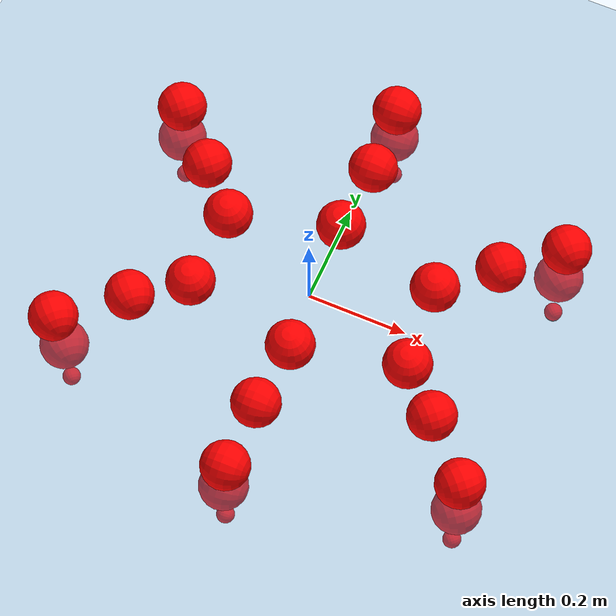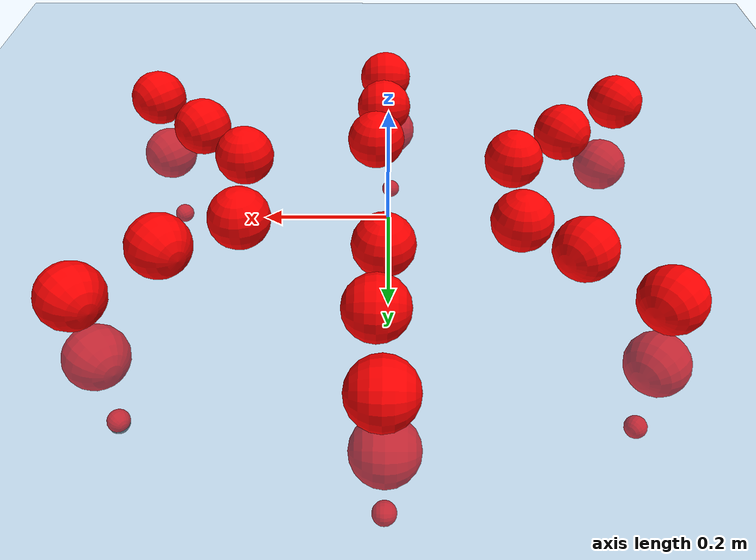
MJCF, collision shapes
<mujoco model="Golem">
  <compiler angle="radian" assetdir="assets" balanceinertia="true" inertiafromgeom="false"/>

  <option timestep="0.005" density="1.2" viscosity="2e-05"/>

  <size nkey="1"/>

  <visual>
    <quality shadowsize="8192"/>
    <map shadowclip="0.5"/>
  </visual>

  <default>
    <default class="/">
      <joint armature="0.01" damping="0.01" frictionloss="0.01"/>
      <geom contype="0" conaffinity="0" group="1" solref="-1000 -80"/>
      <site size="0.01 0.005 0.005" group="5"/>
      <general forcelimited="true" biastype="affine" gainprm="25" biasprm="0 -25 -0.5"/>
      <default class="visual">
        <geom type="mesh" group="2"/>
      </default>
      <default class="collision">
        <geom group="3"/>
      </default>
      <default class="foot">
        <geom size="0.01 0 0" condim="6" group="4" priority="1" solimp="0.015 1 0.01"/>
      </default>
      <default class="reward_collision_sphere">
        <geom group="5" rgba="1 0 0 1"/>
      </default>
    </default>
  </default>

  <asset>
    <texture type="skybox" colorspace="auto" name="//unnamed_texture_0" builtin="gradient" rgb1="0.95 0.95 0.95" rgb2="0.95 0.95 0.95" width="100" height="600"/>
    <texture type="2d" colorspace="auto" name="texplane" builtin="checker" rgb1="0.345 0.575 0.748" rgb2="0.345 0.575 0.748" markrgb="1 1 1" width="512" height="512"/>
    <material name="MatPlane" class="/" texture="texplane" texuniform="true" texrepeat="2 2" specular="0.9"/>
    <mesh name="body" class="/" file="body.stl" scale="0.001 0.001 0.001"/>
    <mesh name="coxa" class="/" file="coxa.stl" scale="0.001 0.001 0.001"/>
    <mesh name="femur" class="/" file="femur.stl" scale="0.001 0.001 0.001"/>
    <mesh name="tibia" class="/" file="tibia.stl" scale="0.001 0.001 0.001"/>
    <mesh name="tarsus" class="/" file="tarsus.stl" scale="0.001 0.001 0.001"/>
  </asset>

  <worldbody>
    <geom name="floor" class="/" size="100 100 0.125" type="plane" group="0" material="MatPlane"/>
    <light name="toplight_shadow" class="/" pos="0 0 5" dir="0.0990148 0.0990148 -0.990148" type="directional" ambient="0.04 0.04 0.04" diffuse="0.55 0.55 0.55" specular="0.12 0.12 0.12"/>
    <light name="toplight_fill" class="/" pos="0 0 5" dir="0.0990148 0.0990148 -0.990148" type="directional" castshadow="false" ambient="0.04 0.04 0.04" diffuse="0.3 0.3 0.3" specular="0.08 0.08 0.08"/>
    <body name="trunk" pos="0.00925983 0.0014301 0.000427889" quat="0.99998 0.00366043 -0.00515746 0.000233388">
      <inertial pos="0.00207236 -0.0138212 -0.0126586" quat="0.999377 0.021944 -0.0195176 0.019587" mass="7.08977" diaginertia="0.0588552 0.0323404 0.00965627"/>
      <joint name="//unnamed_joint_0" type="free"/>
      <geom name="//unnamed_geom_1" class="/" pos="0 0 0.0623054" quat="1 0 0 0" type="mesh" rgba="0.9 0.9 0.9 1" mesh="body"/>
      <site name="imu" class="/" pos="0.175251 -0.0535792 0.129475" size="0.0121307"/>
      <camera name="track" class="/" pos="0 -2.54001 0" quat="0.707107 0.707107 0 0" mode="trackcom"/>
      <camera name="ego_camera" class="/" pos="0.181441 0 0.0973522" quat="-0.5 -0.5 0.5 0.5"/>
      <body name="coxa_RR" pos="-0.248409 -0.116451 0.0591866" quat="0.379771 0.00411037 0.00218332 -0.925069">
        <inertial pos="-0.00812161 -0.00556838 -0.00598518" quat="0.997533 0.0671812 0.014986 0.0137828" mass="0.253327" diaginertia="0.0443961 0.0265314 0.00779762"/>
        <joint name="coxa_joint_RR" class="/" pos="0 0 0" axis="0.00254982 0.00462509 -0.999986" range="-3.13699 3.41736" armature="0.00387104" damping="0" frictionloss="0.0112768"/>
        <geom name="//unnamed_geom_2" class="/" type="mesh" rgba="0.2 0.2 0.2 1" mesh="coxa"/>
        <geom name="//unnamed_geom_3" class="reward_collision_sphere" size="0.048523" pos="-0.041871 0 0"/>
        <body name="femur_RR" pos="0.0772882 -0.011546 0.00653929" quat="0.503349 -0.498815 0.498777 0.499043">
          <inertial pos="-0.0120644 -0.00542794 -0.00103641" quat="0.998306 0.0298114 -0.0220671 -0.0448339" mass="0.371494" diaginertia="0.0542728 0.0340096 0.0088651"/>
          <joint name="femur_joint_RR" class="/" pos="0 0 0" axis="0.00654391 0.00720068 -0.999953" range="-3.28645 3.29672" armature="0.0114043" damping="0.0677097" frictionloss="0.00886734"/>
          <geom name="//unnamed_geom_4" class="/" type="mesh" rgba="0.9 0.9 0.9 1" mesh="femur"/>
          <geom name="//unnamed_geom_5" class="reward_collision_sphere" size="0.048523"/>
          <body name="tibia_RR" pos="-0.00389561 -0.150191 -0.00783059" quat="0.000451815 0.999994 0.000498877 -0.00334098">
            <inertial pos="0.00953754 -0.000322808 0.0001541" quat="0.999618 8.22598e-05 0.0248705 -0.012063" mass="0.299353" diaginertia="0.0503006 0.0336001 0.00780027"/>
            <joint name="tibia_joint_RR" class="/" pos="0 0 0" axis="0.0139019 -0.0507681 0.998614" range="-3.03764 3.11648" armature="0.0128376" damping="0.0176871" frictionloss="0.0128196"/>
            <geom name="//unnamed_geom_6" class="/" type="mesh" rgba="0.2 0.2 0.2 1" mesh="tibia"/>
            <geom name="//unnamed_geom_7" class="reward_collision_sphere" size="0.048523"/>
            <body name="tarsus_RR" pos="0.133188 -0.00876605 0.000280302" quat="0.999993 -0.00313489 -0.00151624 -0.00155891">
              <inertial pos="0.0865636 0.00158803 0.00552769" quat="0.498701 0.495824 0.499809 0.505616" mass="0.303154" diaginertia="0.045926 0.027932 0.00745389"/>
              <joint name="tarsus_joint_RR" class="/" pos="0 0 0" axis="-0.00812107 0.00425131 0.999958" range="-3.15039 3.15321" armature="0.0115883" damping="0.02398" frictionloss="0.0182727"/>
              <geom name="//unnamed_geom_8" class="/" type="mesh" rgba="0.9 0.9 0.9 1" mesh="tarsus"/>
              <geom name="foot_1" class="foot" size="0.0124863" pos="0.156318 0 0" quat="0 -0.707107 0 0.707107"/>
              <geom name="//unnamed_geom_10" class="reward_collision_sphere" size="0.048523"/>
              <geom name="//unnamed_geom_11" class="reward_collision_sphere" size="0.0181961" pos="0.150038 0 0"/>
              <site name="foot_1" class="foot" pos="0.156318 0 0" quat="0 -0.707107 0 0.707107" size="0.0121307"/>
            </body>
          </body>
        </body>
      </body>
      <body name="coxa_RM" pos="0.012097 -0.178966 0.0628633" quat="0.707983 0.00139233 0.00110849 -0.706227">
        <inertial pos="0.0116993 0.000524753 0.00245405" quat="0.999984 -0.00293934 -0.00200952 0.00429229" mass="0.308146" diaginertia="0.0483433 0.0258153 0.00750622"/>
        <joint name="coxa_joint_RM" class="/" pos="0 0 0" axis="-0.00293211 -0.00445792 -0.999986" range="-3.33913 3.10888" armature="0.00617793" damping="0" frictionloss="0.0114002"/>
        <geom name="//unnamed_geom_12" class="/" type="mesh" rgba="0.2 0.2 0.2 1" mesh="coxa"/>
        <geom name="//unnamed_geom_13" class="reward_collision_sphere" size="0.048523" pos="-0.041871 0 0"/>
        <body name="femur_RM" pos="0.0884911 -0.0132866 -0.0116396" quat="0.497404 -0.502328 0.500552 0.499704">
          <inertial pos="-0.000671846 0.00704958 -0.00490476" quat="0.997791 -0.0365244 0.0549285 -0.00784079" mass="0.388227" diaginertia="0.0669296 0.0391389 0.0106256"/>
          <joint name="femur_joint_RM" class="/" pos="0 0 0" axis="0.00562735 0.00110073 -0.999984" range="-2.86771 3.20657" armature="0.0125645" damping="0" frictionloss="0.01194"/>
          <geom name="//unnamed_geom_14" class="/" type="mesh" rgba="0.9 0.9 0.9 1" mesh="femur"/>
          <geom name="//unnamed_geom_15" class="reward_collision_sphere" size="0.048523"/>
          <body name="tibia_RM" pos="0.0115545 -0.134574 -0.00368932" quat="0.00453543 0.999976 0.00390146 -0.0034431">
            <inertial pos="0.0088904 -0.000890173 0.00317907" quat="0.998826 0.0438916 -0.0196639 -0.00574655" mass="0.353307" diaginertia="0.0526973 0.0380816 0.0103009"/>
            <joint name="tibia_joint_RM" class="/" pos="0 0 0" axis="-0.00869212 -0.0161867 0.999831" stiffness="0.0603462" range="-3.13532 3.15569" armature="0.0128055" damping="0.0500548" frictionloss="0.0140718"/>
            <geom name="//unnamed_geom_16" class="/" type="mesh" rgba="0.2 0.2 0.2 1" mesh="tibia"/>
            <geom name="//unnamed_geom_17" class="reward_collision_sphere" size="0.048523"/>
            <body name="tarsus_RM" pos="0.120179 -0.00416613 0.00975728" quat="0.999983 0.00423157 -0.00321574 0.00249474">
              <inertial pos="0.0827765 -0.00158375 0.000104511" quat="0.482819 0.513695 0.499653 0.503339" mass="0.36249" diaginertia="0.0517594 0.0335853 0.00740573"/>
              <joint name="tarsus_joint_RM" class="/" pos="0 0 0" axis="0.0401614 0.0373102 0.998496" range="-2.9626 2.8639" armature="0.0168659" damping="0.00213128" frictionloss="0.020466"/>
              <geom name="//unnamed_geom_18" class="/" type="mesh" rgba="0.9 0.9 0.9 1" mesh="tarsus"/>
              <geom name="foot_2" class="foot" size="0.0104516" pos="0.156318 0 0" quat="0 -0.707107 0 0.707107"/>
              <geom name="//unnamed_geom_20" class="reward_collision_sphere" size="0.048523"/>
              <geom name="//unnamed_geom_21" class="reward_collision_sphere" size="0.0181961" pos="0.150038 0 0"/>
              <site name="foot_2" class="foot" pos="0.156318 0 0" quat="0 -0.707107 0 0.707107" size="0.0121307"/>
            </body>
          </body>
        </body>
      </body>
      <body name="coxa_RF" pos="0.260225 -0.11598 0.0621509" quat="0.922471 0.000241782 0.00455583 -0.38604">
        <inertial pos="-0.012044 -0.0123361 -0.00056003" quat="0.999991 -0.00197419 -8.55472e-05 0.00386086" mass="0.355965" diaginertia="0.0556931 0.0369645 0.00902568"/>
        <joint name="coxa_joint_RF" class="/" pos="0 0 0" axis="0.0237305 0.0154398 -0.999599" stiffness="0.0680484" range="-3.262 3.38703" armature="0.0153295" damping="0" frictionloss="0.0115556"/>
        <geom name="//unnamed_geom_22" class="/" type="mesh" rgba="0.2 0.2 0.2 1" mesh="coxa"/>
        <geom name="//unnamed_geom_23" class="reward_collision_sphere" size="0.048523" pos="-0.041871 0 0"/>
        <body name="femur_RF" pos="0.0755193 0.00152558 0.00463737" quat="0.499563 -0.498455 0.504684 0.497267">
          <inertial pos="-0.000456861 0.00741688 -0.0132522" quat="0.998508 0.0297368 0.00712753 -0.0452398" mass="0.372987" diaginertia="0.0607112 0.0382133 0.0117436"/>
          <joint name="femur_joint_RF" class="/" pos="0 0 0" axis="-0.030863 0.0602851 -0.997704" range="-3.12972 3.28395" armature="0.00314669" damping="0.0125224" frictionloss="0.00625149"/>
          <geom name="//unnamed_geom_24" class="/" type="mesh" rgba="0.9 0.9 0.9 1" mesh="femur"/>
          <geom name="//unnamed_geom_25" class="reward_collision_sphere" size="0.048523"/>
          <body name="tibia_RF" pos="0.00251742 -0.143671 -0.000897136" quat="0.000248517 0.999994 -0.00265529 -0.00211194">
            <inertial pos="-0.00309018 -0.000825889 -0.00114768" quat="0.998749 -0.023663 -0.043554 0.0066408" mass="0.412348" diaginertia="0.0584083 0.0377137 0.008112"/>
            <joint name="tibia_joint_RF" class="/" pos="0 0 0" axis="-0.00257586 0.0111459 0.999935" stiffness="0.0386049" range="-3.14155 2.89161" armature="0.011437" damping="0.0214182" frictionloss="0.00940736"/>
            <geom name="//unnamed_geom_26" class="/" type="mesh" rgba="0.2 0.2 0.2 1" mesh="tibia"/>
            <geom name="//unnamed_geom_27" class="reward_collision_sphere" size="0.048523"/>
            <body name="tarsus_RF" pos="0.123433 0.00103442 0.00144351" quat="0.999977 0.00469266 -0.00478746 0.000366704">
              <inertial pos="0.0877278 0.00037859 -0.00173883" quat="0.496266 0.507321 0.525796 0.468918" mass="0.397342" diaginertia="0.0592054 0.0361604 0.0109787"/>
              <joint name="tarsus_joint_RF" class="/" pos="0 0 0" axis="0.00782077 0.0177384 0.999812" range="-3.13547 3.13335" armature="0.0124287" damping="0.0130295" frictionloss="0.00738499"/>
              <geom name="//unnamed_geom_28" class="/" type="mesh" rgba="0.9 0.9 0.9 1" mesh="tarsus"/>
              <geom name="foot_3" class="foot" size="0.00697029" pos="0.156318 0 0" quat="0 -0.707107 0 0.707107"/>
              <geom name="//unnamed_geom_30" class="reward_collision_sphere" size="0.048523"/>
              <geom name="//unnamed_geom_31" class="reward_collision_sphere" size="0.0181961" pos="0.150038 0 0"/>
              <site name="foot_3" class="foot" pos="0.156318 0 0" quat="0 -0.707107 0 0.707107" size="0.0121307"/>
            </body>
          </body>
        </body>
      </body>
      <body name="coxa_LR" pos="-0.242553 0.104161 0.0568234" quat="0.379612 0.00233936 0.00396877 0.925134">
        <inertial pos="0.000623099 -0.00080983 -0.00422456" quat="0.999986 0.000850697 -0.00442088 0.00279985" mass="0.388745" diaginertia="0.060982 0.0329464 0.0103558"/>
        <joint name="coxa_joint_LR" class="/" pos="0 0 0" axis="0.0100579 0.0549809 -0.998437" stiffness="0.0265866" range="-3.35054 3.13304" armature="0.015537" damping="0" frictionloss="0.0128921"/>
        <geom name="//unnamed_geom_32" class="/" type="mesh" rgba="0.2 0.2 0.2 1" mesh="coxa"/>
        <geom name="//unnamed_geom_33" class="reward_collision_sphere" size="0.048523" pos="-0.041871 0 0"/>
        <body name="femur_LR" pos="0.0709315 -0.000123097 0.0121337" quat="0.498175 -0.499544 0.500879 0.501396">
          <inertial pos="-0.000355943 0.00116065 -0.00648318" quat="0.999638 -0.00722544 0.00281438 0.025781" mass="0.335485" diaginertia="0.0485217 0.0358847 0.00787997"/>
          <joint name="femur_joint_LR" class="/" pos="0 0 0" axis="0.00847925 0.00269478 0.99996" stiffness="0.0444964" range="-2.90464 2.90845" armature="0.0108379" damping="0.0649364" frictionloss="0.0144608"/>
          <geom name="//unnamed_geom_34" class="/" type="mesh" rgba="0.9 0.9 0.9 1" mesh="femur"/>
          <geom name="//unnamed_geom_35" class="reward_collision_sphere" size="0.048523"/>
          <body name="tibia_LR" pos="0.00363497 -0.140331 -0.000932393" quat="0.000303569 0.999998 -0.00134661 -0.00116058">
            <inertial pos="0.0136428 0.00402297 0.0122708" quat="0.999977 -0.00480721 0.00464636 0.00115771" mass="0.356324" diaginertia="0.0546853 0.0289173 0.00982351"/>
            <joint name="tibia_joint_LR" class="/" pos="0 0 0" axis="-0.00187135 0.000810317 -0.999998" stiffness="0.0402823" range="-3.38416 2.94097" armature="0.0164222" damping="0" frictionloss="0.0150268"/>
            <geom name="//unnamed_geom_36" class="/" type="mesh" rgba="0.2 0.2 0.2 1" mesh="tibia"/>
            <geom name="//unnamed_geom_37" class="reward_collision_sphere" size="0.048523"/>
            <body name="tarsus_LR" pos="0.127755 0.00638242 -0.00374988" quat="1 0.000238209 0.000460903 0.000599961">
              <inertial pos="0.0810335 0.00224733 -0.00369567" quat="0.499461 0.501873 0.4998 0.49886" mass="0.328393" diaginertia="0.0493614 0.0252397 0.00748699"/>
              <joint name="tarsus_joint_LR" class="/" pos="0 0 0" axis="0.0601914 0.0163964 -0.998052" range="-3.10955 3.33586" armature="0.0135468" damping="0.0247249" frictionloss="0.00621426"/>
              <geom name="//unnamed_geom_38" class="/" type="mesh" rgba="0.9 0.9 0.9 1" mesh="tarsus"/>
              <geom name="foot_4" class="foot" size="0.0103369" pos="0.156318 0 0" quat="0.707107 0 -0.707107 0"/>
              <geom name="//unnamed_geom_40" class="reward_collision_sphere" size="0.048523"/>
              <geom name="//unnamed_geom_41" class="reward_collision_sphere" size="0.0181961" pos="0.150038 0 0"/>
              <site name="foot_4" class="foot" pos="0.156318 0 0" quat="0.707107 0 -0.707107 0" size="0.0121307"/>
            </body>
          </body>
        </body>
      </body>
      <body name="coxa_LM" pos="-0.00150336 0.178828 0.0596623" quat="0.708709 0.000380935 -0.00183845 0.705498">
        <inertial pos="-0.0121821 -0.0133843 -0.00426384" quat="1 0.000378634 0.000197652 -0.000438591" mass="0.352179" diaginertia="0.0496712 0.0324902 0.00849117"/>
        <joint name="coxa_joint_LM" class="/" pos="0 0 0" axis="-0.0042232 -0.0125308 -0.999913" stiffness="0.0486705" range="-3.29658 3.29749" armature="0.00516072" damping="0.0336074" frictionloss="0.00751699"/>
        <geom name="//unnamed_geom_42" class="/" type="mesh" rgba="0.2 0.2 0.2 1" mesh="coxa"/>
        <geom name="//unnamed_geom_43" class="reward_collision_sphere" size="0.048523" pos="-0.041871 0 0"/>
        <body name="femur_LM" pos="0.0946345 -0.00854566 0.00550937" quat="0.498795 -0.49523 0.502379 0.503553">
          <inertial pos="0.00853391 -0.00754894 0.00181451" quat="0.998777 0.0444837 -0.000735846 -0.021585" mass="0.3428" diaginertia="0.0445391 0.0350994 0.00806565"/>
          <joint name="femur_joint_LM" class="/" pos="0 0 0" axis="-0.00406314 -0.0188123 0.999815" range="-3.24469 3.13387" armature="0.0201572" damping="0.0400513" frictionloss="0.012129"/>
          <geom name="//unnamed_geom_44" class="/" type="mesh" rgba="0.9 0.9 0.9 1" mesh="femur"/>
          <geom name="//unnamed_geom_45" class="reward_collision_sphere" size="0.048523"/>
          <body name="tibia_LM" pos="0.00300097 -0.139739 0.0093003" quat="1.96798e-05 1 -3.79498e-05 2.65356e-05">
            <inertial pos="-0.00416339 -0.0114296 -0.00639686" quat="0.999744 0.00791698 -0.0205812 0.00507295" mass="0.375033" diaginertia="0.0599234 0.0314399 0.00805631"/>
            <joint name="tibia_joint_LM" class="/" pos="0 0 0" axis="0.0131081 0.0373285 -0.999217" stiffness="0.0179272" range="-3.04626 2.95265" armature="0.0107323" damping="0.0508467" frictionloss="0.0168981"/>
            <geom name="//unnamed_geom_46" class="/" type="mesh" rgba="0.2 0.2 0.2 1" mesh="tibia"/>
            <geom name="//unnamed_geom_47" class="reward_collision_sphere" size="0.048523"/>
            <body name="tarsus_LM" pos="0.113558 0.00287072 -0.00411748" quat="1 -0.00023714 0.000287965 -0.000664756">
              <inertial pos="0.0854582 0.00178825 -9.31399e-05" quat="0.490386 0.492939 0.485725 0.529721" mass="0.254243" diaginertia="0.0417822 0.0280596 0.00853527"/>
              <joint name="tarsus_joint_LM" class="/" pos="0 0 0" axis="0.00589679 -0.0283128 -0.999582" range="-3.15117 3.315" armature="0.011024" damping="0" frictionloss="0.0118732"/>
              <geom name="//unnamed_geom_48" class="/" type="mesh" rgba="0.9 0.9 0.9 1" mesh="tarsus"/>
              <geom name="foot_5" class="foot" size="0.0101437" pos="0.156318 0 0" quat="0.707107 0 -0.707107 0"/>
              <geom name="//unnamed_geom_50" class="reward_collision_sphere" size="0.048523"/>
              <geom name="//unnamed_geom_51" class="reward_collision_sphere" size="0.0181961" pos="0.150038 0 0"/>
              <site name="foot_5" class="foot" pos="0.156318 0 0" quat="0.707107 0 -0.707107 0" size="0.0121307"/>
            </body>
          </body>
        </body>
      </body>
      <body name="coxa_LF" pos="0.246296 0.11172 0.0628756" quat="0.923933 -0.000243189 0.000440539 0.382555">
        <inertial pos="0.00166742 -0.00318609 -0.000414537" quat="0.999998 0.00140692 0.000795438 0.00148249" mass="0.41511" diaginertia="0.0604132 0.0334415 0.00899224"/>
        <joint name="coxa_joint_LF" class="/" pos="0 0 0" axis="0.061229 -0.0140919 -0.998024" range="-3.14343 3.25993" armature="0.0091544" damping="0.0252713" frictionloss="0.0117978"/>
        <geom name="//unnamed_geom_52" class="/" type="mesh" rgba="0.2 0.2 0.2 1" mesh="coxa"/>
        <geom name="//unnamed_geom_53" class="reward_collision_sphere" size="0.048523" pos="-0.041871 0 0"/>
        <body name="femur_LF" pos="0.087766 -0.0134871 0.0140033" quat="0.500496 -0.500893 0.499465 0.499144">
          <inertial pos="0.0109675 -0.00604895 0.00347291" quat="0.999991 -0.00321352 -0.0019439 0.00203947" mass="0.343933" diaginertia="0.0595559 0.0405754 0.00961611"/>
          <joint name="femur_joint_LF" class="/" pos="0 0 0" axis="0.0452652 -0.0283598 0.998572" range="-3.12195 3.37586" armature="0.0182434" damping="0.00274058" frictionloss="0.0105787"/>
          <geom name="//unnamed_geom_54" class="/" type="mesh" rgba="0.9 0.9 0.9 1" mesh="femur"/>
          <geom name="//unnamed_geom_55" class="reward_collision_sphere" size="0.048523"/>
          <body name="tibia_LF" pos="0.0122511 -0.135532 -0.00617835" quat="-0.0014177 0.999998 -0.0010324 -0.000289879">
            <inertial pos="-0.00407782 -0.00636374 -0.00131708" quat="0.998213 -0.0283077 0.0358933 -0.0384929" mass="0.367537" diaginertia="0.053264 0.0313974 0.00806459"/>
            <joint name="tibia_joint_LF" class="/" pos="0 0 0" axis="0.00865892 -0.00131434 -0.999962" range="-3.11601 3.28011" armature="0.0205682" damping="0.0196236" frictionloss="0.0115163"/>
            <geom name="//unnamed_geom_56" class="/" type="mesh" rgba="0.2 0.2 0.2 1" mesh="tibia"/>
            <geom name="//unnamed_geom_57" class="reward_collision_sphere" size="0.048523"/>
            <body name="tarsus_LF" pos="0.122856 -0.00648827 -0.00452719" quat="0.999976 -0.00130489 -0.000691598 -0.00670957">
              <inertial pos="0.0738187 0.0114987 0.000200476" quat="0.498124 0.500374 0.500346 0.501151" mass="0.402389" diaginertia="0.0622256 0.0372581 0.0100535"/>
              <joint name="tarsus_joint_LF" class="/" pos="0 0 0" axis="-0.00772777 0.0563919 -0.998379" range="-3.36074 3.12504" armature="0.0113418" damping="0" frictionloss="0.0115112"/>
              <geom name="//unnamed_geom_58" class="/" type="mesh" rgba="0.9 0.9 0.9 1" mesh="tarsus"/>
              <geom name="foot_6" class="foot" size="0.0166682" pos="0.156318 0 0" quat="0.707107 0 -0.707107 0"/>
              <geom name="//unnamed_geom_60" class="reward_collision_sphere" size="0.048523"/>
              <geom name="//unnamed_geom_61" class="reward_collision_sphere" size="0.0181961" pos="0.150038 0 0"/>
              <site name="foot_6" class="foot" pos="0.156318 0 0" quat="0.707107 0 -0.707107 0" size="0.0121307"/>
            </body>
          </body>
        </body>
      </body>
    </body>
  </worldbody>

  <contact>
    <pair class="/" geom1="floor" geom2="foot_1" name="//unnamed_contact_0"/>
    <pair class="/" geom1="floor" geom2="foot_2" name="//unnamed_contact_1"/>
    <pair class="/" geom1="floor" geom2="foot_3" name="//unnamed_contact_2"/>
    <pair class="/" geom1="floor" geom2="foot_4" name="//unnamed_contact_3"/>
    <pair class="/" geom1="floor" geom2="foot_5" name="//unnamed_contact_4"/>
    <pair class="/" geom1="floor" geom2="foot_6" name="//unnamed_contact_5"/>
  </contact>

  <actuator>
    <general name="coxa_joint_RR" class="/" joint="coxa_joint_RR" forcerange="-8.72391 8.72391" gainprm="23.9806" biasprm="0 -23.9806 -0.703849"/>
    <general name="femur_joint_RR" class="/" joint="femur_joint_RR" forcerange="-8.9619 8.9619" gainprm="23.9806" biasprm="0 -23.9806 -0.703849"/>
    <general name="tibia_joint_RR" class="/" joint="tibia_joint_RR" forcerange="-9.06771 9.06771" gainprm="23.9806" biasprm="0 -23.9806 -0.703849"/>
    <general name="tarsus_joint_RR" class="/" joint="tarsus_joint_RR" forcerange="-9.98741 9.98741" gainprm="23.9806" biasprm="0 -23.9806 -0.703849"/>
    <general name="coxa_joint_RM" class="/" joint="coxa_joint_RM" forcerange="-10.1419 10.1419" gainprm="23.9806" biasprm="0 -23.9806 -0.703849"/>
    <general name="femur_joint_RM" class="/" joint="femur_joint_RM" forcerange="-12.1554 12.1554" gainprm="23.9806" biasprm="0 -23.9806 -0.703849"/>
    <general name="tibia_joint_RM" class="/" joint="tibia_joint_RM" forcerange="-8.90935 8.90935" gainprm="23.9806" biasprm="0 -23.9806 -0.703849"/>
    <general name="tarsus_joint_RM" class="/" joint="tarsus_joint_RM" forcerange="-7.33 7.33" gainprm="23.9806" biasprm="0 -23.9806 -0.703849"/>
    <general name="coxa_joint_RF" class="/" joint="coxa_joint_RF" forcerange="-12.3468 12.3468" gainprm="23.9806" biasprm="0 -23.9806 -0.703849"/>
    <general name="femur_joint_RF" class="/" joint="femur_joint_RF" forcerange="-11.9923 11.9923" gainprm="23.9806" biasprm="0 -23.9806 -0.703849"/>
    <general name="tibia_joint_RF" class="/" joint="tibia_joint_RF" forcerange="-5.86548 5.86548" gainprm="23.9806" biasprm="0 -23.9806 -0.703849"/>
    <general name="tarsus_joint_RF" class="/" joint="tarsus_joint_RF" forcerange="-6.9773 6.9773" gainprm="23.9806" biasprm="0 -23.9806 -0.703849"/>
    <general name="coxa_joint_LR" class="/" joint="coxa_joint_LR" forcerange="-9.09576 9.09576" gainprm="23.9806" biasprm="0 -23.9806 -0.703849"/>
    <general name="femur_joint_LR" class="/" joint="femur_joint_LR" forcerange="-11.1564 11.1564" gainprm="23.9806" biasprm="0 -23.9806 -0.703849"/>
    <general name="tibia_joint_LR" class="/" joint="tibia_joint_LR" forcerange="-12.9949 12.9949" gainprm="23.9806" biasprm="0 -23.9806 -0.703849"/>
    <general name="tarsus_joint_LR" class="/" joint="tarsus_joint_LR" forcerange="-4.4687 4.4687" gainprm="23.9806" biasprm="0 -23.9806 -0.703849"/>
    <general name="coxa_joint_LM" class="/" joint="coxa_joint_LM" forcerange="-6.68598 6.68598" gainprm="23.9806" biasprm="0 -23.9806 -0.703849"/>
    <general name="femur_joint_LM" class="/" joint="femur_joint_LM" forcerange="-9.33771 9.33771" gainprm="23.9806" biasprm="0 -23.9806 -0.703849"/>
    <general name="tibia_joint_LM" class="/" joint="tibia_joint_LM" forcerange="-8.51521 8.51521" gainprm="23.9806" biasprm="0 -23.9806 -0.703849"/>
    <general name="tarsus_joint_LM" class="/" joint="tarsus_joint_LM" forcerange="-10.6007 10.6007" gainprm="23.9806" biasprm="0 -23.9806 -0.703849"/>
    <general name="coxa_joint_LF" class="/" joint="coxa_joint_LF" forcerange="-8.44929 8.44929" gainprm="23.9806" biasprm="0 -23.9806 -0.703849"/>
    <general name="femur_joint_LF" class="/" joint="femur_joint_LF" forcerange="-8.99661 8.99661" gainprm="23.9806" biasprm="0 -23.9806 -0.703849"/>
    <general name="tibia_joint_LF" class="/" joint="tibia_joint_LF" forcerange="-7.34007 7.34007" gainprm="23.9806" biasprm="0 -23.9806 -0.703849"/>
    <general name="tarsus_joint_LF" class="/" joint="tarsus_joint_LF" forcerange="-8.97582 8.97582" gainprm="23.9806" biasprm="0 -23.9806 -0.703849"/>
  </actuator>

  <sensor>
    <gyro site="imu" name="imu_angular_velocity"/>
    <velocimeter site="imu" name="imu_linear_velocity"/>
    <framelinvel objtype="site" objname="foot_1" name="foot_1_global_linear_velocity"/>
    <framelinvel objtype="site" objname="foot_2" name="foot_2_global_linear_velocity"/>
    <framelinvel objtype="site" objname="foot_3" name="foot_3_global_linear_velocity"/>
    <framelinvel objtype="site" objname="foot_4" name="foot_4_global_linear_velocity"/>
    <framelinvel objtype="site" objname="foot_5" name="foot_5_global_linear_velocity"/>
    <framelinvel objtype="site" objname="foot_6" name="foot_6_global_linear_velocity"/>
  </sensor>

  <keyframe>
    <key name="home" qpos="0 0 0.1457 1 0 0 0 0 0 0 0 0 0 0 0 0 0 0 0 0 0 0 0 0 0 0 0 0 0 0 0"/>
  </keyframe>
</mujoco>
